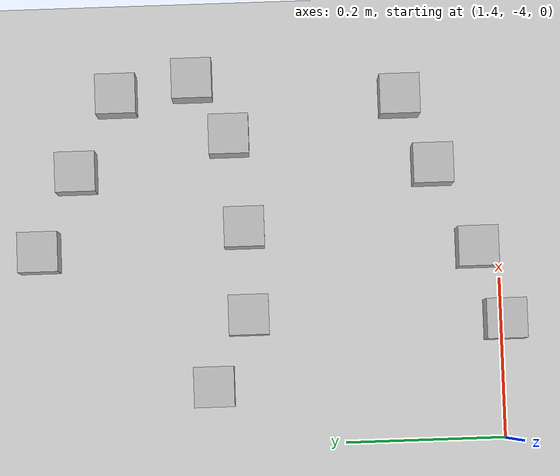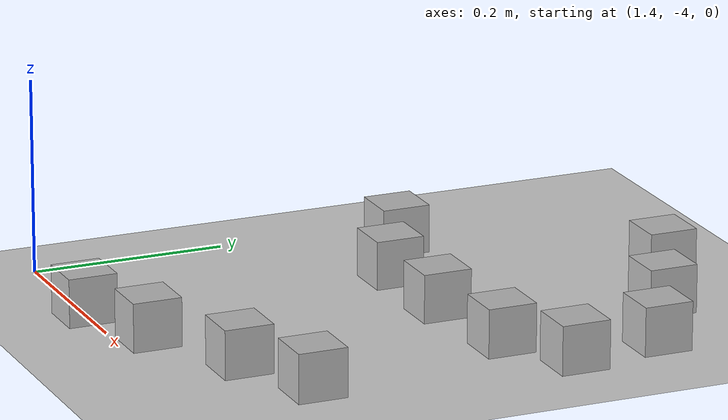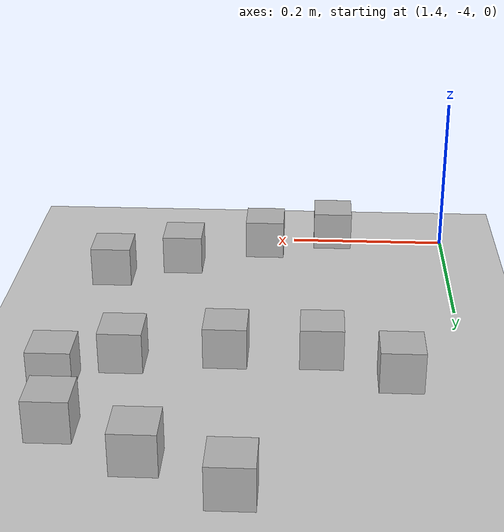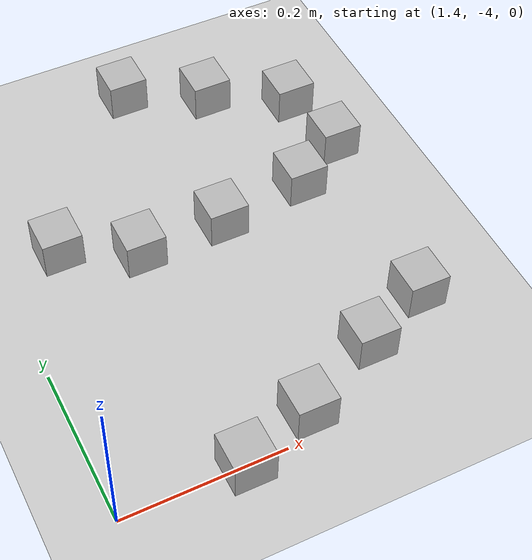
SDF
<sdf version="1.4">
 <world name="default">
  <model name="ground_plane">
   <static>1</static>
   <link name="link">
    <collision name="collision">
     <geometry><plane><normal>0 0 1</normal><size>100 100</size></plane></geometry>
     <surface><friction><ode><mu>100</mu><mu2>50</mu2></ode></friction></surface>
    </collision>
    <visual name="visual">
     <cast_shadows>0</cast_shadows>
     <geometry><plane><normal>0 0 1</normal><size>100 100</size></plane></geometry>
     <material>
      <script><uri>file://media/materials/scripts/gazebo.material</uri><name>Gazebo/Grey</name></script>
     </material>
    </visual>
    <velocity_decay><linear>0</linear><angular>0</angular></velocity_decay>
   </link>
  </model>
  <model name="at105">
   <static>0</static>
   <link name="link">
    <inertial>
     <mass>0.01</mass>
     <inertia><ixx>4e-05</ixx><ixy>0</ixy><ixz>0</ixz><iyy>4e-05</iyy><iyz>0</iyz><izz>4e-05</izz></inertia>
    </inertial>
    <visual name="visual">
     <geometry><box><size>0.05 0.05 0.05</size></box></geometry>
     <material>
      <script>
       <uri>model://at0/materials/scripts</uri>
       <uri>model://at0/materials/textures</uri>
       <name>at0/Diffuse</name>
      </script>
     </material>
    </visual>
    <collision name="collision">
     <geometry><box><size>0.05 0.05 0.05</size></box></geometry>
     <surface><friction><ode><mu>0.8</mu><mu2>0.7</mu2></ode></friction></surface>
    </collision>
    <velocity_decay><linear>0</linear><angular>0</angular></velocity_decay>
   </link>
   <pose>1.54802 -4.00223 0.025 0 -0 0</pose>
  </model>
  <model name="at106">
   <static>0</static>
   <link name="link">
    <inertial>
     <mass>0.01</mass>
     <inertia><ixx>4e-05</ixx><ixy>0</ixy><ixz>0</ixz><iyy>4e-05</iyy><iyz>0</iyz><izz>4e-05</izz></inertia>
    </inertial>
    <visual name="visual">
     <geometry><box><size>0.05 0.05 0.05</size></box></geometry>
     <material>
      <script>
       <uri>model://at0/materials/scripts</uri>
       <uri>model://at0/materials/textures</uri>
       <name>at0/Diffuse</name>
      </script>
     </material>
    </visual>
    <collision name="collision">
     <geometry><box><size>0.05 0.05 0.05</size></box></geometry>
     <surface><friction><ode><mu>0.8</mu><mu2>0.7</mu2></ode></friction></surface>
    </collision>
    <velocity_decay><linear>0</linear><angular>0</angular></velocity_decay>
   </link>
   <pose>1.63888 -3.97059 0.025 0 -0 0</pose>
  </model>
  <model name="at107">
   <static>0</static>
   <link name="link">
    <inertial>
     <mass>0.01</mass>
     <inertia><ixx>4e-05</ixx><ixy>0</ixy><ixz>0</ixz><iyy>4e-05</iyy><iyz>0</iyz><izz>4e-05</izz></inertia>
    </inertial>
    <visual name="visual">
     <geometry><box><size>0.05 0.05 0.05</size></box></geometry>
     <material>
      <script>
       <uri>model://at0/materials/scripts</uri>
       <uri>model://at0/materials/textures</uri>
       <name>at0/Diffuse</name>
      </script>
     </material>
    </visual>
    <collision name="collision">
     <geometry><box><size>0.05 0.05 0.05</size></box></geometry>
     <surface><friction><ode><mu>0.8</mu><mu2>0.7</mu2></ode></friction></surface>
    </collision>
    <velocity_decay><linear>0</linear><angular>0</angular></velocity_decay>
   </link>
   <pose>1.74404 -3.91857 0.025 0 -0 0</pose>
  </model>
  <model name="at108">
   <static>0</static>
   <link name="link">
    <inertial>
     <mass>0.01</mass>
     <inertia><ixx>4e-05</ixx><ixy>0</ixy><ixz>0</ixz><iyy>4e-05</iyy><iyz>0</iyz><izz>4e-05</izz></inertia>
    </inertial>
    <visual name="visual">
     <geometry><box><size>0.05 0.05 0.05</size></box></geometry>
     <material>
      <script>
       <uri>model://at0/materials/scripts</uri>
       <uri>model://at0/materials/textures</uri>
       <name>at0/Diffuse</name>
      </script>
     </material>
    </visual>
    <collision name="collision">
     <geometry><box><size>0.05 0.05 0.05</size></box></geometry>
     <surface><friction><ode><mu>0.8</mu><mu2>0.7</mu2></ode></friction></surface>
    </collision>
    <velocity_decay><linear>0</linear><angular>0</angular></velocity_decay>
   </link>
   <pose>1.83178 -3.87999 0.025 0 -0 0</pose>
  </model>
  <model name="at116">
   <static>0</static>
   <link name="link">
    <inertial>
     <mass>0.01</mass>
     <inertia><ixx>4e-05</ixx><ixy>0</ixy><ixz>0</ixz><iyy>4e-05</iyy><iyz>0</iyz><izz>4e-05</izz></inertia>
    </inertial>
    <visual name="visual">
     <geometry><box><size>0.05 0.05 0.05</size></box></geometry>
     <material>
      <script>
       <uri>model://at0/materials/scripts</uri>
       <uri>model://at0/materials/textures</uri>
       <name>at0/Diffuse</name>
      </script>
     </material>
    </visual>
    <collision name="collision">
     <geometry><box><size>0.05 0.05 0.05</size></box></geometry>
     <surface><friction><ode><mu>0.8</mu><mu2>0.7</mu2></ode></friction></surface>
    </collision>
    <velocity_decay><linear>0</linear><angular>0</angular></velocity_decay>
   </link>
   <pose>1.64891 -3.42445 0.025 0 -0 0</pose>
  </model>
  <model name="at117">
   <static>0</static>
   <link name="link">
    <inertial>
     <mass>0.01</mass>
     <inertia><ixx>4e-05</ixx><ixy>0</ixy><ixz>0</ixz><iyy>4e-05</iyy><iyz>0</iyz><izz>4e-05</izz></inertia>
    </inertial>
    <visual name="visual">
     <geometry><box><size>0.05 0.05 0.05</size></box></geometry>
     <material>
      <script>
       <uri>model://at0/materials/scripts</uri>
       <uri>model://at0/materials/textures</uri>
       <name>at0/Diffuse</name>
      </script>
     </material>
    </visual>
    <collision name="collision">
     <geometry><box><size>0.05 0.05 0.05</size></box></geometry>
     <surface><friction><ode><mu>0.8</mu><mu2>0.7</mu2></ode></friction></surface>
    </collision>
    <velocity_decay><linear>0</linear><angular>0</angular></velocity_decay>
   </link>
   <pose>1.74729 -3.47322 0.025 0 -0 0</pose>
  </model>
  <model name="at118">
   <static>0</static>
   <link name="link">
    <inertial>
     <mass>0.01</mass>
     <inertia><ixx>4e-05</ixx><ixy>0</ixy><ixz>0</ixz><iyy>4e-05</iyy><iyz>0</iyz><izz>4e-05</izz></inertia>
    </inertial>
    <visual name="visual">
     <geometry><box><size>0.05 0.05 0.05</size></box></geometry>
     <material>
      <script>
       <uri>model://at0/materials/scripts</uri>
       <uri>model://at0/materials/textures</uri>
       <name>at0/Diffuse</name>
      </script>
     </material>
    </visual>
    <collision name="collision">
     <geometry><box><size>0.05 0.05 0.05</size></box></geometry>
     <surface><friction><ode><mu>0.8</mu><mu2>0.7</mu2></ode></friction></surface>
    </collision>
    <velocity_decay><linear>0</linear><angular>0</angular></velocity_decay>
   </link>
   <pose>1.84324 -3.52605 0.025 0 -0 0</pose>
  </model>
  <model name="at136">
   <static>0</static>
   <link name="link">
    <inertial>
     <mass>0.01</mass>
     <inertia><ixx>4e-05</ixx><ixy>0</ixy><ixz>0</ixz><iyy>4e-05</iyy><iyz>0</iyz><izz>4e-05</izz></inertia>
    </inertial>
    <visual name="visual">
     <geometry><box><size>0.05 0.05 0.05</size></box></geometry>
     <material>
      <script>
       <uri>model://at0/materials/scripts</uri>
       <uri>model://at0/materials/textures</uri>
       <name>at0/Diffuse</name>
      </script>
     </material>
    </visual>
    <collision name="collision">
     <geometry><box><size>0.05 0.05 0.05</size></box></geometry>
     <surface><friction><ode><mu>0.8</mu><mu2>0.7</mu2></ode></friction></surface>
    </collision>
    <velocity_decay><linear>0</linear><angular>0</angular></velocity_decay>
   </link>
   <pose>1.85957 -3.62123 0.025 0 -0 0</pose>
  </model>
  <model name="at137">
   <static>0</static>
   <link name="link">
    <inertial>
     <mass>0.01</mass>
     <inertia><ixx>4e-05</ixx><ixy>0</ixy><ixz>0</ixz><iyy>4e-05</iyy><iyz>0</iyz><izz>4e-05</izz></inertia>
    </inertial>
    <visual name="visual">
     <geometry><box><size>0.05 0.05 0.05</size></box></geometry>
     <material>
      <script>
       <uri>model://at0/materials/scripts</uri>
       <uri>model://at0/materials/textures</uri>
       <name>at0/Diffuse</name>
      </script>
     </material>
    </visual>
    <collision name="collision">
     <geometry><box><size>0.05 0.05 0.05</size></box></geometry>
     <surface><friction><ode><mu>0.8</mu><mu2>0.7</mu2></ode></friction></surface>
    </collision>
    <velocity_decay><linear>0</linear><angular>0</angular></velocity_decay>
   </link>
   <pose>1.78844 -3.66532 0.025 0 -0 0</pose>
  </model>
  <model name="at138">
   <static>0</static>
   <link name="link">
    <inertial>
     <mass>0.01</mass>
     <inertia><ixx>4e-05</ixx><ixy>0</ixy><ixz>0</ixz><iyy>4e-05</iyy><iyz>0</iyz><izz>4e-05</izz></inertia>
    </inertial>
    <visual name="visual">
     <geometry><box><size>0.05 0.05 0.05</size></box></geometry>
     <material>
      <script>
       <uri>model://at0/materials/scripts</uri>
       <uri>model://at0/materials/textures</uri>
       <name>at0/Diffuse</name>
      </script>
     </material>
    </visual>
    <collision name="collision">
     <geometry><box><size>0.05 0.05 0.05</size></box></geometry>
     <surface><friction><ode><mu>0.8</mu><mu2>0.7</mu2></ode></friction></surface>
    </collision>
    <velocity_decay><linear>0</linear><angular>0</angular></velocity_decay>
   </link>
   <pose>1.67226 -3.68101 0.025 0 -0 0</pose>
  </model>
  <model name="at139">
   <static>0</static>
   <link name="link">
    <inertial>
     <mass>0.01</mass>
     <inertia><ixx>4e-05</ixx><ixy>0</ixy><ixz>0</ixz><iyy>4e-05</iyy><iyz>0</iyz><izz>4e-05</izz></inertia>
    </inertial>
    <visual name="visual">
     <geometry><box><size>0.05 0.05 0.05</size></box></geometry>
     <material>
      <script>
       <uri>model://at0/materials/scripts</uri>
       <uri>model://at0/materials/textures</uri>
       <name>at0/Diffuse</name>
      </script>
     </material>
    </visual>
    <collision name="collision">
     <geometry><box><size>0.05 0.05 0.05</size></box></geometry>
     <surface><friction><ode><mu>0.8</mu><mu2>0.7</mu2></ode></friction></surface>
    </collision>
    <velocity_decay><linear>0</linear><angular>0</angular></velocity_decay>
   </link>
   <pose>1.56279 -3.68327 0.025 0 -0 0</pose>
  </model>
  <model name="at140">
   <static>0</static>
   <link name="link">
    <inertial>
     <mass>0.01</mass>
     <inertia><ixx>4e-05</ixx><ixy>0</ixy><ixz>0</ixz><iyy>4e-05</iyy><iyz>0</iyz><izz>4e-05</izz></inertia>
    </inertial>
    <visual name="visual">
     <geometry><box><size>0.05 0.05 0.05</size></box></geometry>
     <material>
      <script>
       <uri>model://at0/materials/scripts</uri>
       <uri>model://at0/materials/textures</uri>
       <name>at0/Diffuse</name>
      </script>
     </material>
    </visual>
    <collision name="collision">
     <geometry><box><size>0.05 0.05 0.05</size></box></geometry>
     <surface><friction><ode><mu>0.8</mu><mu2>0.7</mu2></ode></friction></surface>
    </collision>
    <velocity_decay><linear>0</linear><angular>0</angular></velocity_decay>
   </link>
   <pose>1.47492 -3.63787 0.025 0 -0 0</pose>
  </model>
 </world>
</sdf>
